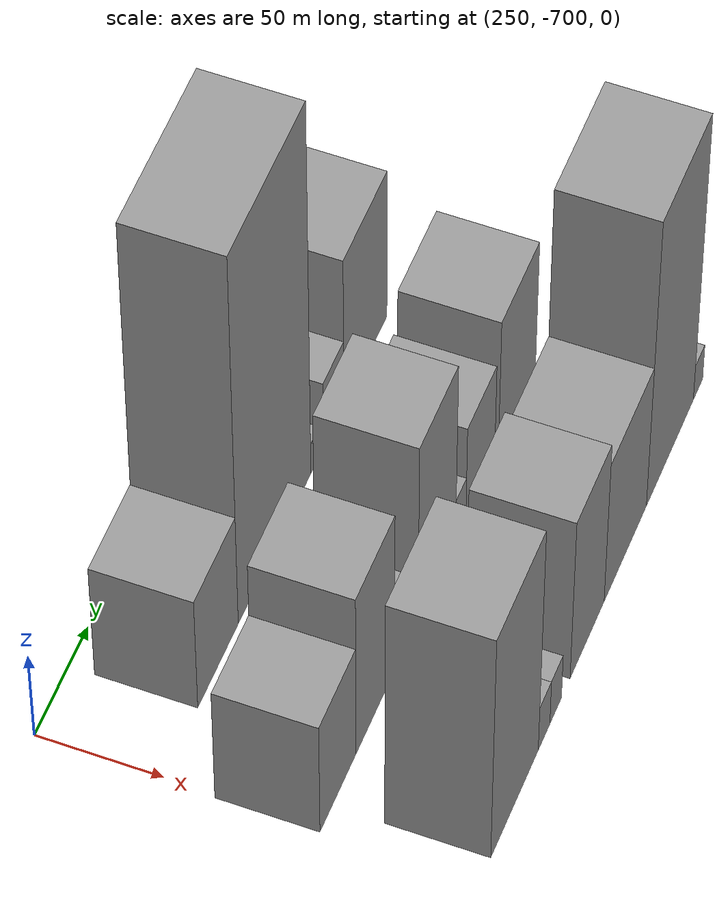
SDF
<sdf version="1.6">
 <world name="default">
  <model name="building_163">
   <static>1</static>
   <pose>280.0000 -648.7282 0 0.000000 0.000000 0.000000</pose>
   <link name="link">
    <pose>0 0 33.00 0 0 0</pose>
    <collision name="collision"><geometry><box><size>40.0000 38.9931 66.0000</size></box></geometry></collision>
    <visual name="visual">
     <cast_shadows>0</cast_shadows>
     <geometry><box><size>40.0000 38.9931 66.0000</size></box></geometry>
     <material>
      <script>
       <uri>model://grey_wall/materials/scripts</uri>
       <uri>model://grey_wall/materials/textures</uri>
       <name>vrc/grey_wall</name>
      </script>
     </material>
    </visual>
   </link>
  </model>
  <model name="building_164">
   <static>1</static>
   <pose>280.0000 -593.3296 0 0.000000 0.000000 0.000000</pose>
   <link name="link">
    <pose>0 0 108.00 0 0 0</pose>
    <collision name="collision"><geometry><box><size>40.0000 71.8040 216.0000</size></box></geometry></collision>
    <visual name="visual">
     <cast_shadows>0</cast_shadows>
     <geometry><box><size>40.0000 71.8040 216.0000</size></box></geometry>
     <material>
      <script>
       <uri>model://grey_wall/materials/scripts</uri>
       <uri>model://grey_wall/materials/textures</uri>
       <name>vrc/grey_wall</name>
      </script>
     </material>
    </visual>
   </link>
  </model>
  <model name="building_165">
   <static>1</static>
   <pose>280.0000 -552.9891 0 0.000000 0.000000 0.000000</pose>
   <link name="link">
    <pose>0 0 9.00 0 0 0</pose>
    <collision name="collision"><geometry><box><size>40.0000 8.8771 18.0000</size></box></geometry></collision>
    <visual name="visual">
     <cast_shadows>0</cast_shadows>
     <geometry><box><size>40.0000 8.8771 18.0000</size></box></geometry>
     <material>
      <script>
       <uri>model://grey_wall/materials/scripts</uri>
       <uri>model://grey_wall/materials/textures</uri>
       <name>vrc/grey_wall</name>
      </script>
     </material>
    </visual>
   </link>
  </model>
  <model name="building_166">
   <static>1</static>
   <pose>280.0000 -534.2191 0 0.000000 0.000000 0.000000</pose>
   <link name="link">
    <pose>0 0 19.50 0 0 0</pose>
    <collision name="collision"><geometry><box><size>40.0000 20.6629 39.0000</size></box></geometry></collision>
    <visual name="visual">
     <cast_shadows>0</cast_shadows>
     <geometry><box><size>40.0000 20.6629 39.0000</size></box></geometry>
     <material>
      <script>
       <uri>model://grey_wall/materials/scripts</uri>
       <uri>model://grey_wall/materials/textures</uri>
       <name>vrc/grey_wall</name>
      </script>
     </material>
    </visual>
   </link>
  </model>
  <model name="building_167">
   <static>1</static>
   <pose>280.0000 -501.7302 0 0.000000 0.000000 0.000000</pose>
   <link name="link">
    <pose>0 0 43.50 0 0 0</pose>
    <collision name="collision"><geometry><box><size>40.0000 44.3150 87.0000</size></box></geometry></collision>
    <visual name="visual">
     <cast_shadows>0</cast_shadows>
     <geometry><box><size>40.0000 44.3150 87.0000</size></box></geometry>
     <material>
      <script>
       <uri>model://grey_wall/materials/scripts</uri>
       <uri>model://grey_wall/materials/textures</uri>
       <name>vrc/grey_wall</name>
      </script>
     </material>
    </visual>
   </link>
  </model>
  <model name="building_216">
   <static>1</static>
   <pose>340.0000 -683.8826 0 0.000000 0.000000 0.000000</pose>
   <link name="link">
    <pose>0 0 33.00 0 0 0</pose>
    <collision name="collision"><geometry><box><size>40.0000 35.2708 66.0000</size></box></geometry></collision>
    <visual name="visual">
     <cast_shadows>0</cast_shadows>
     <geometry><box><size>40.0000 35.2708 66.0000</size></box></geometry>
     <material>
      <script>
       <uri>model://grey_wall/materials/scripts</uri>
       <uri>model://grey_wall/materials/textures</uri>
       <name>vrc/grey_wall</name>
      </script>
     </material>
    </visual>
   </link>
  </model>
  <model name="building_217">
   <static>1</static>
   <pose>340.0000 -647.1881 0 0.000000 0.000000 0.000000</pose>
   <link name="link">
    <pose>0 0 48.00 0 0 0</pose>
    <collision name="collision"><geometry><box><size>40.0000 38.1180 96.0000</size></box></geometry></collision>
    <visual name="visual">
     <cast_shadows>0</cast_shadows>
     <geometry><box><size>40.0000 38.1180 96.0000</size></box></geometry>
     <material>
      <script>
       <uri>model://grey_wall/materials/scripts</uri>
       <uri>model://grey_wall/materials/textures</uri>
       <name>vrc/grey_wall</name>
      </script>
     </material>
    </visual>
   </link>
  </model>
  <model name="building_218">
   <static>1</static>
   <pose>340.0000 -622.6816 0 0.000000 0.000000 0.000000</pose>
   <link name="link">
    <pose>0 0 12.00 0 0 0</pose>
    <collision name="collision"><geometry><box><size>40.0000 10.8951 24.0000</size></box></geometry></collision>
    <visual name="visual">
     <cast_shadows>0</cast_shadows>
     <geometry><box><size>40.0000 10.8951 24.0000</size></box></geometry>
     <material>
      <script>
       <uri>model://grey_wall/materials/scripts</uri>
       <uri>model://grey_wall/materials/textures</uri>
       <name>vrc/grey_wall</name>
      </script>
     </material>
    </visual>
   </link>
  </model>
  <model name="building_219">
   <static>1</static>
   <pose>340.0000 -610.7625 0 0.000000 0.000000 0.000000</pose>
   <link name="link">
    <pose>0 0 13.50 0 0 0</pose>
    <collision name="collision"><geometry><box><size>40.0000 12.9431 27.0000</size></box></geometry></collision>
    <visual name="visual">
     <cast_shadows>0</cast_shadows>
     <geometry><box><size>40.0000 12.9431 27.0000</size></box></geometry>
     <material>
      <script>
       <uri>model://grey_wall/materials/scripts</uri>
       <uri>model://grey_wall/materials/textures</uri>
       <name>vrc/grey_wall</name>
      </script>
     </material>
    </visual>
   </link>
  </model>
  <model name="building_220">
   <static>1</static>
   <pose>340.0000 -585.0304 0 0.000000 0.000000 0.000000</pose>
   <link name="link">
    <pose>0 0 52.50 0 0 0</pose>
    <collision name="collision"><geometry><box><size>40.0000 38.5209 105.0000</size></box></geometry></collision>
    <visual name="visual">
     <cast_shadows>0</cast_shadows>
     <geometry><box><size>40.0000 38.5209 105.0000</size></box></geometry>
     <material>
      <script>
       <uri>model://grey_wall/materials/scripts</uri>
       <uri>model://grey_wall/materials/textures</uri>
       <name>vrc/grey_wall</name>
      </script>
     </material>
    </visual>
   </link>
  </model>
  <model name="building_221">
   <static>1</static>
   <pose>340.0000 -560.4151 0 0.000000 0.000000 0.000000</pose>
   <link name="link">
    <pose>0 0 12.00 0 0 0</pose>
    <collision name="collision"><geometry><box><size>40.0000 10.7098 24.0000</size></box></geometry></collision>
    <visual name="visual">
     <cast_shadows>0</cast_shadows>
     <geometry><box><size>40.0000 10.7098 24.0000</size></box></geometry>
     <material>
      <script>
       <uri>model://grey_wall/materials/scripts</uri>
       <uri>model://grey_wall/materials/textures</uri>
       <name>vrc/grey_wall</name>
      </script>
     </material>
    </visual>
   </link>
  </model>
  <model name="building_222">
   <static>1</static>
   <pose>340.0000 -539.9671 0 0.000000 0.000000 0.000000</pose>
   <link name="link">
    <pose>0 0 27.00 0 0 0</pose>
    <collision name="collision"><geometry><box><size>40.0000 30.1861 54.0000</size></box></geometry></collision>
    <visual name="visual">
     <cast_shadows>0</cast_shadows>
     <geometry><box><size>40.0000 30.1861 54.0000</size></box></geometry>
     <material>
      <script>
       <uri>model://grey_wall/materials/scripts</uri>
       <uri>model://grey_wall/materials/textures</uri>
       <name>vrc/grey_wall</name>
      </script>
     </material>
    </visual>
   </link>
  </model>
  <model name="building_223">
   <static>1</static>
   <pose>340.0000 -501.1568 0 0.000000 0.000000 0.000000</pose>
   <link name="link">
    <pose>0 0 37.50 0 0 0</pose>
    <collision name="collision"><geometry><box><size>40.0000 39.4346 75.0000</size></box></geometry></collision>
    <visual name="visual">
     <cast_shadows>0</cast_shadows>
     <geometry><box><size>40.0000 39.4346 75.0000</size></box></geometry>
     <material>
      <script>
       <uri>model://grey_wall/materials/scripts</uri>
       <uri>model://grey_wall/materials/textures</uri>
       <name>vrc/grey_wall</name>
      </script>
     </material>
    </visual>
   </link>
  </model>
  <model name="building_270">
   <static>1</static>
   <pose>400.0000 -665.6886 0 0.000000 0.000000 0.000000</pose>
   <link name="link">
    <pose>0 0 67.50 0 0 0</pose>
    <collision name="collision"><geometry><box><size>40.0000 48.3795 135.0000</size></box></geometry></collision>
    <visual name="visual">
     <cast_shadows>0</cast_shadows>
     <geometry><box><size>40.0000 48.3795 135.0000</size></box></geometry>
     <material>
      <script>
       <uri>model://grey_wall/materials/scripts</uri>
       <uri>model://grey_wall/materials/textures</uri>
       <name>vrc/grey_wall</name>
      </script>
     </material>
    </visual>
   </link>
  </model>
  <model name="building_271">
   <static>1</static>
   <pose>400.0000 -635.4987 0 0.000000 0.000000 0.000000</pose>
   <link name="link">
    <pose>0 0 13.50 0 0 0</pose>
    <collision name="collision"><geometry><box><size>40.0000 12.0002 27.0000</size></box></geometry></collision>
    <visual name="visual">
     <cast_shadows>0</cast_shadows>
     <geometry><box><size>40.0000 12.0002 27.0000</size></box></geometry>
     <material>
      <script>
       <uri>model://grey_wall/materials/scripts</uri>
       <uri>model://grey_wall/materials/textures</uri>
       <name>vrc/grey_wall</name>
      </script>
     </material>
    </visual>
   </link>
  </model>
  <model name="building_272">
   <static>1</static>
   <pose>400.0000 -623.4657 0 0.000000 0.000000 0.000000</pose>
   <link name="link">
    <pose>0 0 13.50 0 0 0</pose>
    <collision name="collision"><geometry><box><size>40.0000 12.0658 27.0000</size></box></geometry></collision>
    <visual name="visual">
     <cast_shadows>0</cast_shadows>
     <geometry><box><size>40.0000 12.0658 27.0000</size></box></geometry>
     <material>
      <script>
       <uri>model://grey_wall/materials/scripts</uri>
       <uri>model://grey_wall/materials/textures</uri>
       <name>vrc/grey_wall</name>
      </script>
     </material>
    </visual>
   </link>
  </model>
  <model name="building_273">
   <static>1</static>
   <pose>400.0000 -590.4365 0 0.000000 0.000000 0.000000</pose>
   <link name="link">
    <pose>0 0 48.00 0 0 0</pose>
    <collision name="collision"><geometry><box><size>40.0000 35.9926 96.0000</size></box></geometry></collision>
    <visual name="visual">
     <cast_shadows>0</cast_shadows>
     <geometry><box><size>40.0000 35.9926 96.0000</size></box></geometry>
     <material>
      <script>
       <uri>model://grey_wall/materials/scripts</uri>
       <uri>model://grey_wall/materials/textures</uri>
       <name>vrc/grey_wall</name>
      </script>
     </material>
    </visual>
   </link>
  </model>
  <model name="building_274">
   <static>1</static>
   <pose>400.0000 -549.6590 0 0.000000 0.000000 0.000000</pose>
   <link name="link">
    <pose>0 0 42.00 0 0 0</pose>
    <collision name="collision"><geometry><box><size>40.0000 45.5623 84.0000</size></box></geometry></collision>
    <visual name="visual">
     <cast_shadows>0</cast_shadows>
     <geometry><box><size>40.0000 45.5623 84.0000</size></box></geometry>
     <material>
      <script>
       <uri>model://grey_wall/materials/scripts</uri>
       <uri>model://grey_wall/materials/textures</uri>
       <name>vrc/grey_wall</name>
      </script>
     </material>
    </visual>
   </link>
  </model>
  <model name="building_275">
   <static>1</static>
   <pose>400.0000 -500.9954 0 0.000000 0.000000 0.000000</pose>
   <link name="link">
    <pose>0 0 84.00 0 0 0</pose>
    <collision name="collision"><geometry><box><size>40.0000 51.7650 168.0000</size></box></geometry></collision>
    <visual name="visual">
     <cast_shadows>0</cast_shadows>
     <geometry><box><size>40.0000 51.7650 168.0000</size></box></geometry>
     <material>
      <script>
       <uri>model://grey_wall/materials/scripts</uri>
       <uri>model://grey_wall/materials/textures</uri>
       <name>vrc/grey_wall</name>
      </script>
     </material>
    </visual>
   </link>
  </model>
  <model name="building_276">
   <static>1</static>
   <pose>400.0000 -469.9146 0 0.000000 0.000000 0.000000</pose>
   <link name="link">
    <pose>0 0 10.50 0 0 0</pose>
    <collision name="collision"><geometry><box><size>40.0000 10.3965 21.0000</size></box></geometry></collision>
    <visual name="visual">
     <cast_shadows>0</cast_shadows>
     <geometry><box><size>40.0000 10.3965 21.0000</size></box></geometry>
     <material>
      <script>
       <uri>model://grey_wall/materials/scripts</uri>
       <uri>model://grey_wall/materials/textures</uri>
       <name>vrc/grey_wall</name>
      </script>
     </material>
    </visual>
   </link>
  </model>
 </world>
</sdf>
